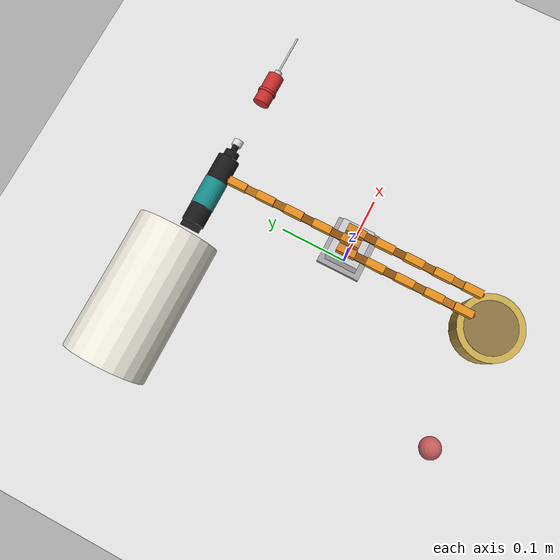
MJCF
<mujoco model="3finger_compliant_gripper">

  <compiler angle="radian" autolimits="true"/>

  <option gravity="0 0 -9.81" timestep="0.0005" integrator="implicit"
          solver="Newton" iterations="200" cone="elliptic"
          noslip_iterations="4" noslip_tolerance="1e-6">
    <flag warmstart="enable"/>
  </option>

  <visual>
    <headlight ambient="0.45 0.45 0.45" diffuse="0.6 0.6 0.6"/>
    <rgba haze="1.0 1.0 1.0 1"/>
    <quality shadowsize="2048"/>
    <map znear="0.001"/>
  </visual>

  <default>
    <default class="finger_link">
      <geom type="box" density="1100" friction="2.8 0.8 0.02"
            rgba="0.88 0.55 0.10 1" contype="1" conaffinity="1"
            condim="6" solref="0.012 1.0" solimp="0.82 0.95 0.008"
            margin="0.003"/>
    </default>
    <default class="finger_joint_geom">
      <geom type="box" density="1100" contype="1" conaffinity="1"
            condim="6" friction="2.8 0.8 0.02"
            solref="0.012 1.0" solimp="0.82 0.95 0.008"
            margin="0.003"/>
    </default>
    <default class="palm_link">
      <geom type="box" density="1300" friction="2.8 0.8 0.02"
            rgba="0.82 0.50 0.12 1" contype="1" conaffinity="1"
            condim="6" solref="0.012 1.0" solimp="0.82 0.95 0.008"
            margin="0.003"/>
    </default>
    <default class="finger_joint">
      <joint type="hinge" damping="0.018" armature="1e-5"
             limited="true" range="0 3.14"/>
    </default>
    <!-- Lip spheres: 2mm radius, 4 per link (tip + center × ±Z).
         Simulate TPU conforming around curved objects.
         condim=6 for full torsional/rolling friction. -->
    <default class="finger_lip">
      <geom type="sphere" density="0" contype="1" conaffinity="1"
            condim="6" friction="2.8 0.8 0.02"
            solref="0.016 1.0" solimp="0.78 0.92 0.010"
            rgba="0.88 0.55 0.10 0" margin="0.003"/>
    </default>
  </default>

  <asset>

    <texture name="white_sky" type="skybox" builtin="gradient"
             rgb1="1 1 1" rgb2="1 1 1" width="512" height="512"/>

    <material name="white_floor" rgba="1 1 1 1" shininess="0" specular="0"/>

    <texture name="grid" type="2d" builtin="checker"
             rgb1="0.92 0.92 0.92" rgb2="0.82 0.82 0.82"
             width="256" height="256"/>
    <material name="grid_mat" texture="grid" texrepeat="8 8"
              reflectance="0.1"/>
    <material name="body_mat" rgba="0.78 0.78 0.80 1"/>
    <material name="body_base_mat" rgba="0.62 0.62 0.64 1"/>
    <material name="joint1_mat" rgba="0.55 0.30 0.05 1"/>
    <material name="joint2_mat" rgba="0.62 0.36 0.08 1"/>
    <material name="joint3_mat" rgba="0.70 0.42 0.10 1"/>
    <material name="object_mat" rgba="0.30 0.70 0.35 0.85" specular="0.3"/>
    <material name="object2_mat" rgba="0.25 0.45 0.80 0.85" specular="0.3"/>
    <material name="object3_mat" rgba="0.80 0.30 0.30 0.85" specular="0.3"/>
    <material name="paper_towel_mat" rgba="0.95 0.93 0.88 1.0" specular="0.05"/>
    <!-- Paint tube (Liquitex Basics): dark body + light cap + teal label band -->
    <material name="paint_tube_mat"     rgba="0.10 0.10 0.10 1.0" specular="0.15"/>
    <material name="paint_tube_label_mat" rgba="0.10 0.55 0.55 1.0" specular="0.20"/>
    <material name="paint_tube_cap_mat" rgba="0.88 0.88 0.88 1.0" specular="0.40"/>
    <!-- Screwdriver: red rubber handle + silver steel shaft -->
    <material name="screwdriver_handle_mat" rgba="0.80 0.18 0.18 1.0" specular="0.10"/>
    <material name="screwdriver_shaft_mat"  rgba="0.80 0.80 0.82 1.0" specular="0.60"/>
    <!-- Tape roll (packing tape): amber body + cardboard core -->
    <material name="tape_roll_mat"  rgba="0.78 0.66 0.29 1.0" specular="0.25"/>
    <material name="tape_core_mat"  rgba="0.54 0.44 0.25 1.0" specular="0.10"/>
  </asset>

  <worldbody>

    <geom name="floor" type="plane" size="0.5 0.5 0.01" material="grid_mat"
          contype="1" conaffinity="1"/>
    <light pos="0 0 0.8" dir="0 0 -1" diffuse="0.7 0.7 0.7" castshadow="true"/>
    <light pos="0.4 0.4 0.6" dir="-0.3 -0.3 -0.5" diffuse="0.4 0.4 0.4"/>

    <!-- === GRIPPER ASSEMBLY  (base at z=0.144, rod_base bottom flush with floor) === -->
    <body name="gripper_base" pos="0 0 0.144">

      <geom name="body_main" type="box" size="0.026 0.022 0.018"
            pos="0 0 -0.030" material="body_mat"
            contype="0" conaffinity="0"/>
      <geom name="body_plate" type="box" size="0.033 0.030 0.005"
            pos="0 0 -0.053" material="body_base_mat"
            contype="0" conaffinity="0"/>
      <geom name="rod" type="cylinder" size="0.006 0.04"
            pos="0 0 -0.098" rgba="0.5 0.5 0.52 1"
            contype="0" conaffinity="0"/>
      <geom name="rod_base" type="cylinder" size="0.018 0.003"
            pos="0 0 -0.141" rgba="0.45 0.45 0.47 1"
            contype="0" conaffinity="0"/>

      <body name="A_palm" pos="-0.014 0.012 0" euler="0 0 -1.5708">
        <joint name="A_splay" type="hinge" axis="0 0 -1"
               limited="true" range="0 0.5236"
               damping="0.05" stiffness="0.5" armature="1e-4"/>
        <geom name="A_palm_geom" class="palm_link"
              size="0.0125 0.005 0.0075" pos="0.0125 0 0"/>
        <!-- link0: cable-driven proximal segment — NO flex sensor on hardware -->
        <body name="A_link0" pos="0.025 0 0">
          <joint name="A_j0" class="finger_joint" axis="0 -1 0"
                 stiffness="0.05750"/>
          <geom name="A_j0_geom" class="finger_joint_geom" material="joint1_mat"
                size="0.0075 0.005 0.001625" pos="0.0075 0 0"/>
          <geom name="A_l0_geom" class="finger_link"
                size="0.0125 0.005 0.006" pos="0.0275 0 0"/>
          <geom name="A_l0_lip_a" class="finger_lip" pos="0.033 0 0.007" size="0.002"/>
          <geom name="A_l0_lip_b" class="finger_lip" pos="0.033 0 -0.007" size="0.002"/>
          <geom name="A_l0_lip_c" class="finger_lip" pos="0.0225 0 0.007" size="0.002"/>
          <geom name="A_l0_lip_d" class="finger_lip" pos="0.0225 0 -0.007" size="0.002"/>
        <body name="A_link1" pos="0.040 0 0">
          <joint name="A_j1" class="finger_joint" axis="0 -1 0"
                 stiffness="0.05750"/>
          <geom name="A_j1_geom" class="finger_joint_geom" material="joint1_mat"
                size="0.0075 0.005 0.001625" pos="0.0075 0 0"/>
          <geom name="A_l1_geom" class="finger_link"
                size="0.0125 0.005 0.006" pos="0.0275 0 0"/>
          <geom name="A_l1_lip_a" class="finger_lip" pos="0.033 0 0.007" size="0.002"/>
          <geom name="A_l1_lip_b" class="finger_lip" pos="0.033 0 -0.007" size="0.002"/>
          <geom name="A_l1_lip_c" class="finger_lip" pos="0.0225 0 0.007" size="0.002"/>
          <geom name="A_l1_lip_d" class="finger_lip" pos="0.0225 0 -0.007" size="0.002"/>
          <site name="A_force1" pos="0.0275 0 0.012" size="0.008" rgba="1 0 0 0"/>
          <body name="A_link2" pos="0.040 0 0">
            <joint name="A_j2" class="finger_joint" axis="0 -1 0"
                   stiffness="0.05750"/>
            <geom name="A_j2_geom" class="finger_joint_geom" material="joint2_mat"
                  size="0.0075 0.005 0.001625" pos="0.0075 0 0"/>
            <geom name="A_l2_geom" class="finger_link"
                  size="0.0125 0.005 0.006" pos="0.0275 0 0"/>
            <geom name="A_l2_lip_a" class="finger_lip" pos="0.033 0 0.007" size="0.002"/>
            <geom name="A_l2_lip_b" class="finger_lip" pos="0.033 0 -0.007" size="0.002"/>
          <geom name="A_l2_lip_c" class="finger_lip" pos="0.0225 0 0.007" size="0.002"/>
          <geom name="A_l2_lip_d" class="finger_lip" pos="0.0225 0 -0.007" size="0.002"/>
            <site name="A_force2" pos="0.0275 0 0.012" size="0.008" rgba="1 0 0 0"/>
            <body name="A_link3" pos="0.040 0 0">
              <joint name="A_j3" class="finger_joint" axis="0 -1 0"
                     stiffness="0.07182"/>
              <geom name="A_j3_geom" class="finger_joint_geom" material="joint3_mat"
                    size="0.0075 0.005 0.00175" pos="0.0075 0 0"/>
              <geom name="A_l3_geom" class="finger_link"
                    size="0.0125 0.005 0.006" pos="0.0275 0 0"/>
              <geom name="A_l3_lip_a" class="finger_lip" pos="0.033 0 0.007" size="0.002"/>
              <geom name="A_l3_lip_b" class="finger_lip" pos="0.033 0 -0.007" size="0.002"/>
          <geom name="A_l3_lip_c" class="finger_lip" pos="0.0225 0 0.007" size="0.002"/>
          <geom name="A_l3_lip_d" class="finger_lip" pos="0.0225 0 -0.007" size="0.002"/>
              <site name="A_force3" pos="0.0275 0 0.012" size="0.008" rgba="1 0 0 0"/>
              <site name="A_tip" pos="0.040 0 0" size="0.003" rgba="0.95 0.25 0.2 1"/>
            </body>  <!-- /A_link3 -->
          </body>    <!-- /A_link2 -->
        </body>      <!-- /A_link1 -->
        </body>      <!-- /A_link0 -->
      </body>        <!-- /A_palm -->

      <!-- == FINGER B  (parallel, X=+14mm, extends -Y) == -->
      <body name="B_palm" pos="0.014 0.012 0" euler="0 0 -1.5708">
        <joint name="B_splay" type="hinge" axis="0 0 1"
               limited="true" range="0 0.5236"
               damping="0.05" stiffness="0.5" armature="1e-4"/>
        <geom name="B_palm_geom" class="palm_link"
              size="0.0125 0.005 0.0075" pos="0.0125 0 0"/>
        <!-- link0: cable-driven proximal segment — NO flex sensor on hardware -->
        <body name="B_link0" pos="0.025 0 0">
          <joint name="B_j0" class="finger_joint" axis="0 -1 0"
                 stiffness="0.05750"/>
          <geom name="B_j0_geom" class="finger_joint_geom" material="joint1_mat"
                size="0.0075 0.005 0.001625" pos="0.0075 0 0"/>
          <geom name="B_l0_geom" class="finger_link"
                size="0.0125 0.005 0.006" pos="0.0275 0 0"/>
          <geom name="B_l0_lip_a" class="finger_lip" pos="0.033 0 0.007" size="0.002"/>
          <geom name="B_l0_lip_b" class="finger_lip" pos="0.033 0 -0.007" size="0.002"/>
          <geom name="B_l0_lip_c" class="finger_lip" pos="0.0225 0 0.007" size="0.002"/>
          <geom name="B_l0_lip_d" class="finger_lip" pos="0.0225 0 -0.007" size="0.002"/>
        <body name="B_link1" pos="0.040 0 0">
          <joint name="B_j1" class="finger_joint" axis="0 -1 0"
                 stiffness="0.05750"/>
          <geom name="B_j1_geom" class="finger_joint_geom" material="joint1_mat"
                size="0.0075 0.005 0.001625" pos="0.0075 0 0"/>
          <geom name="B_l1_geom" class="finger_link"
                size="0.0125 0.005 0.006" pos="0.0275 0 0"/>
          <geom name="B_l1_lip_a" class="finger_lip" pos="0.033 0 0.007" size="0.002"/>
          <geom name="B_l1_lip_b" class="finger_lip" pos="0.033 0 -0.007" size="0.002"/>
          <geom name="B_l1_lip_c" class="finger_lip" pos="0.0225 0 0.007" size="0.002"/>
          <geom name="B_l1_lip_d" class="finger_lip" pos="0.0225 0 -0.007" size="0.002"/>
          <site name="B_force1" pos="0.0275 0 0.012" size="0.008" rgba="1 0 0 0"/>
          <body name="B_link2" pos="0.040 0 0">
            <joint name="B_j2" class="finger_joint" axis="0 -1 0"
                   stiffness="0.05750"/>
            <geom name="B_j2_geom" class="finger_joint_geom" material="joint2_mat"
                  size="0.0075 0.005 0.001625" pos="0.0075 0 0"/>
            <geom name="B_l2_geom" class="finger_link"
                  size="0.0125 0.005 0.006" pos="0.0275 0 0"/>
            <geom name="B_l2_lip_a" class="finger_lip" pos="0.033 0 0.007" size="0.002"/>
            <geom name="B_l2_lip_b" class="finger_lip" pos="0.033 0 -0.007" size="0.002"/>
          <geom name="B_l2_lip_c" class="finger_lip" pos="0.0225 0 0.007" size="0.002"/>
          <geom name="B_l2_lip_d" class="finger_lip" pos="0.0225 0 -0.007" size="0.002"/>
            <site name="B_force2" pos="0.0275 0 0.012" size="0.008" rgba="1 0 0 0"/>
            <body name="B_link3" pos="0.040 0 0">
              <joint name="B_j3" class="finger_joint" axis="0 -1 0"
                     stiffness="0.07182"/>
              <geom name="B_j3_geom" class="finger_joint_geom" material="joint3_mat"
                    size="0.0075 0.005 0.00175" pos="0.0075 0 0"/>
              <geom name="B_l3_geom" class="finger_link"
                    size="0.0125 0.005 0.006" pos="0.0275 0 0"/>
              <geom name="B_l3_lip_a" class="finger_lip" pos="0.033 0 0.007" size="0.002"/>
              <geom name="B_l3_lip_b" class="finger_lip" pos="0.033 0 -0.007" size="0.002"/>
          <geom name="B_l3_lip_c" class="finger_lip" pos="0.0225 0 0.007" size="0.002"/>
          <geom name="B_l3_lip_d" class="finger_lip" pos="0.0225 0 -0.007" size="0.002"/>
              <site name="B_force3" pos="0.0275 0 0.012" size="0.008" rgba="1 0 0 0"/>
              <site name="B_tip" pos="0.040 0 0" size="0.003" rgba="0.95 0.25 0.2 1"/>
            </body>  <!-- /B_link3 -->
          </body>    <!-- /B_link2 -->
        </body>      <!-- /B_link1 -->
        </body>      <!-- /B_link0 -->
      </body>        <!-- /B_palm -->

      <!-- == FINGER C  (opposing, X=0, extends +Y) == -->
      <body name="C_palm" pos="0 -0.012 0" euler="0 0 1.5708">
        <geom name="C_palm_geom" class="palm_link"
              size="0.0125 0.005 0.0075" pos="0.0125 0 0"/>
        <!-- link0: cable-driven proximal segment — NO flex sensor on hardware -->
        <body name="C_link0" pos="0.025 0 0">
          <joint name="C_j0" class="finger_joint" axis="0 -1 0"
                 stiffness="0.05750"/>
          <geom name="C_j0_geom" class="finger_joint_geom" material="joint1_mat"
                size="0.0075 0.005 0.001625" pos="0.0075 0 0"/>
          <geom name="C_l0_geom" class="finger_link"
                size="0.0125 0.005 0.006" pos="0.0275 0 0"/>
          <geom name="C_l0_lip_a" class="finger_lip" pos="0.033 0 0.007" size="0.002"/>
          <geom name="C_l0_lip_b" class="finger_lip" pos="0.033 0 -0.007" size="0.002"/>
          <geom name="C_l0_lip_c" class="finger_lip" pos="0.0225 0 0.007" size="0.002"/>
          <geom name="C_l0_lip_d" class="finger_lip" pos="0.0225 0 -0.007" size="0.002"/>
        <body name="C_link1" pos="0.040 0 0">
          <joint name="C_j1" class="finger_joint" axis="0 -1 0"
                 stiffness="0.05750"/>
          <geom name="C_j1_geom" class="finger_joint_geom" material="joint1_mat"
                size="0.0075 0.005 0.001625" pos="0.0075 0 0"/>
          <geom name="C_l1_geom" class="finger_link"
                size="0.0125 0.005 0.006" pos="0.0275 0 0"/>
          <geom name="C_l1_lip_a" class="finger_lip" pos="0.033 0 0.007" size="0.002"/>
          <geom name="C_l1_lip_b" class="finger_lip" pos="0.033 0 -0.007" size="0.002"/>
          <geom name="C_l1_lip_c" class="finger_lip" pos="0.0225 0 0.007" size="0.002"/>
          <geom name="C_l1_lip_d" class="finger_lip" pos="0.0225 0 -0.007" size="0.002"/>
          <site name="C_force1" pos="0.0275 0 0.012" size="0.008" rgba="1 0 0 0"/>
          <body name="C_link2" pos="0.040 0 0">
            <joint name="C_j2" class="finger_joint" axis="0 -1 0"
                   stiffness="0.05750"/>
            <geom name="C_j2_geom" class="finger_joint_geom" material="joint2_mat"
                  size="0.0075 0.005 0.001625" pos="0.0075 0 0"/>
            <geom name="C_l2_geom" class="finger_link"
                  size="0.0125 0.005 0.006" pos="0.0275 0 0"/>
            <geom name="C_l2_lip_a" class="finger_lip" pos="0.033 0 0.007" size="0.002"/>
            <geom name="C_l2_lip_b" class="finger_lip" pos="0.033 0 -0.007" size="0.002"/>
          <geom name="C_l2_lip_c" class="finger_lip" pos="0.0225 0 0.007" size="0.002"/>
          <geom name="C_l2_lip_d" class="finger_lip" pos="0.0225 0 -0.007" size="0.002"/>
            <site name="C_force2" pos="0.0275 0 0.012" size="0.008" rgba="1 0 0 0"/>
            <body name="C_link3" pos="0.040 0 0">
              <joint name="C_j3" class="finger_joint" axis="0 -1 0"
                     stiffness="0.07182"/>
              <geom name="C_j3_geom" class="finger_joint_geom" material="joint3_mat"
                    size="0.0075 0.005 0.00175" pos="0.0075 0 0"/>
              <geom name="C_l3_geom" class="finger_link"
                    size="0.0125 0.005 0.006" pos="0.0275 0 0"/>
              <geom name="C_l3_lip_a" class="finger_lip" pos="0.033 0 0.007" size="0.002"/>
              <geom name="C_l3_lip_b" class="finger_lip" pos="0.033 0 -0.007" size="0.002"/>
          <geom name="C_l3_lip_c" class="finger_lip" pos="0.0225 0 0.007" size="0.002"/>
          <geom name="C_l3_lip_d" class="finger_lip" pos="0.0225 0 -0.007" size="0.002"/>
              <site name="C_force3" pos="0.0275 0 0.012" size="0.008" rgba="1 0 0 0"/>
              <site name="C_tip" pos="0.040 0 0" size="0.003" rgba="0.95 0.25 0.2 1"/>
            </body>  <!-- /C_link3 -->
          </body>    <!-- /C_link2 -->
        </body>      <!-- /C_link1 -->
        </body>      <!-- /C_link0 -->
      </body>        <!-- /C_palm -->

    </body> <!-- /gripper_base -->

    <!-- === GRASPABLE OBJECTS === -->

    <body name="obj_paper_roll" pos="-0.18 0.22 0.0593" euler="0 1.5708 0">
      <freejoint name="obj_paper_roll_jnt"/>
      <geom name="obj_paper_roll_geom" type="cylinder"
            size="0.0593 0.1016"
            density="80" material="paper_towel_mat"
            friction="1.2 0.5 0.01" contype="1" conaffinity="1"
            condim="6" solref="0.020 1.0" solimp="0.85 0.95 0.004"
            margin="0.001"/>
    </body>

    <!-- Sphere -->
    <body name="obj_sphere" pos="-0.18 -0.22 0.016">
      <freejoint name="obj_sphere_jnt"/>
      <geom name="obj_sphere_geom" type="sphere" size="0.016"
            density="800" material="object3_mat"
            friction="1.2 0.5 0.01" contype="1" conaffinity="1"
            condim="6" solref="0.005 1.0"/>
    </body>

    <!-- ═══════════════════════════════════════════════════
         REAL GRIP OBJECTS — geometry from grip_objects.py
         ═══════════════════════════════════════════════════ -->

    <body name="obj_paint_tube" pos="0.0 0.22 0.017" euler="0 1.5708 0">
      <freejoint name="obj_paint_tube_jnt"/>
      <geom name="obj_pt_body" type="cylinder"
            size="0.017 0.055"
            density="900" material="paint_tube_mat"
            friction="1.1 0.5 0.01" contype="1" conaffinity="1"
            condim="6" solref="0.008 1.0" solimp="0.92 0.98 0.001"/>
      <geom name="obj_pt_label" type="cylinder"
            size="0.0173 0.022" pos="0 0 -0.005"
            density="0" material="paint_tube_label_mat"
            contype="0" conaffinity="0"/>
      <geom name="obj_pt_crimp" type="box"
            size="0.0015 0.015 0.005" pos="0 0 -0.059"
            density="1200" material="paint_tube_mat"
            contype="0" conaffinity="0"/>
      <geom name="obj_pt_shoulder" type="cylinder"
            size="0.011 0.006" pos="0 0 0.061"
            density="900" material="paint_tube_mat"
            contype="0" conaffinity="0"/>
      <geom name="obj_pt_nozzle" type="cylinder"
            size="0.005 0.005" pos="0 0 0.072"
            density="900" material="paint_tube_mat"
            contype="0" conaffinity="0"/>
      <geom name="obj_pt_cap" type="cylinder"
            size="0.0075 0.005" pos="0 0 0.082"
            density="900" material="paint_tube_cap_mat"
            contype="0" conaffinity="0"/>
    </body>

    <body name="obj_screwdriver" pos="0.18 0.22 0.013" euler="0 1.5708 0">
      <freejoint name="obj_screwdriver_jnt"/>
      <geom name="obj_sd_handle" type="cylinder"
            size="0.0127 0.025"
            density="1100" material="screwdriver_handle_mat"
            friction="1.8 0.8 0.01" contype="1" conaffinity="1"
            condim="6" solref="0.008 1.0" solimp="0.92 0.98 0.001"/>
      <geom name="obj_sd_grip" type="cylinder"
            size="0.014 0.002" pos="0 0 -0.005"
            density="0" material="screwdriver_handle_mat"
            contype="0" conaffinity="0"/>
      <geom name="obj_sd_ferrule" type="cylinder"
            size="0.006 0.004" pos="0 0 0.029"
            density="7800" material="screwdriver_shaft_mat"
            friction="0.8 0.3 0.01" contype="1" conaffinity="1"
            condim="6" solref="0.005 1.0"/>
      <geom name="obj_sd_shaft" type="cylinder"
            size="0.0015 0.031" pos="0 0 0.064"
            density="7800" material="screwdriver_shaft_mat"
            friction="0.8 0.3 0.01" contype="1" conaffinity="1"
            condim="6" solref="0.005 1.0"/>
    </body>

    <body name="obj_tape_roll" pos="0.0 -0.22 0.0254">
      <freejoint name="obj_tape_roll_jnt"/>
      <!-- Outer tape surface (amber/yellow) -->
      <geom name="obj_tr_outer" type="cylinder"
            size="0.047625 0.0254"
            density="600" material="tape_roll_mat"
            friction="1.4 0.6 0.01" contype="1" conaffinity="1"
            condim="6" solref="0.008 1.0" solimp="0.92 0.98 0.001"/>
      <!-- Inner cardboard core (visual only — no collision) -->
      <geom name="obj_tr_core" type="cylinder"
            size="0.0381 0.0255"
            density="0" material="tape_core_mat"
            contype="0" conaffinity="0"/>
    </body>

  </worldbody>

  <!-- === TENDONS === -->
  <tendon>
    <fixed name="tendon_A" limited="true" range="0 0.090">
      <joint joint="A_j0" coef="0.0050"/>
      <joint joint="A_j1" coef="0.0050"/>
      <joint joint="A_j2" coef="0.0050"/>
      <joint joint="A_j3" coef="0.0050"/>
    </fixed>
    <fixed name="tendon_B" limited="true" range="0 0.090">
      <joint joint="B_j0" coef="0.0050"/>
      <joint joint="B_j1" coef="0.0050"/>
      <joint joint="B_j2" coef="0.0050"/>
      <joint joint="B_j3" coef="0.0050"/>
    </fixed>
    <fixed name="tendon_C" limited="true" range="0 0.090">
      <joint joint="C_j0" coef="0.0050"/>
      <joint joint="C_j1" coef="0.0050"/>
      <joint joint="C_j2" coef="0.0050"/>
      <joint joint="C_j3" coef="0.0050"/>
    </fixed>
  </tendon>

  <!-- === ACTUATORS  (tuned to match real ST3215 servo forces) === -->
  <actuator>
    <position name="act_A_pos" tendon="tendon_A"
              kp="2000" kv="50"
              ctrlrange="0 0.090" forcerange="-20 20"/>
    <position name="act_B_pos" tendon="tendon_B"
              kp="2000" kv="50"
              ctrlrange="0 0.090" forcerange="-20 20"/>
    <position name="act_C_pos" tendon="tendon_C"
              kp="2000" kv="50"
              ctrlrange="0 0.090" forcerange="-20 20"/>

    <general name="act_A_frc" tendon="tendon_A"
             gainprm="1 0 0" biasprm="0 0 0"
             ctrlrange="-10 10" forcerange="-20 20"
             dyntype="none"/>
    <general name="act_B_frc" tendon="tendon_B"
             gainprm="1 0 0" biasprm="0 0 0"
             ctrlrange="-10 10" forcerange="-20 20"
             dyntype="none"/>
    <general name="act_C_frc" tendon="tendon_C"
             gainprm="1 0 0" biasprm="0 0 0"
             ctrlrange="-10 10" forcerange="-20 20"
             dyntype="none"/>

    <!-- Splay actuators: parallel fingers A & B rotate outward -->
    <position name="act_A_splay" joint="A_splay"
              kp="500" kv="20"
              ctrlrange="0 0.5236" forcerange="-10 10"/>
    <position name="act_B_splay" joint="B_splay"
              kp="500" kv="20"
              ctrlrange="0 0.5236" forcerange="-10 10"/>
  </actuator>

  <!-- === SENSORS === -->
  <sensor>
    <jointpos name="A_j0_pos" joint="A_j0"/>
    <jointpos name="A_j1_pos" joint="A_j1"/>
    <jointpos name="A_j2_pos" joint="A_j2"/>
    <jointpos name="A_j3_pos" joint="A_j3"/>
    <jointpos name="B_j0_pos" joint="B_j0"/>
    <jointpos name="B_j1_pos" joint="B_j1"/>
    <jointpos name="B_j2_pos" joint="B_j2"/>
    <jointpos name="B_j3_pos" joint="B_j3"/>
    <jointpos name="C_j0_pos" joint="C_j0"/>
    <jointpos name="C_j1_pos" joint="C_j1"/>
    <jointpos name="C_j2_pos" joint="C_j2"/>
    <jointpos name="C_j3_pos" joint="C_j3"/>
    <tendonpos name="ten_A_len" tendon="tendon_A"/>
    <tendonpos name="ten_B_len" tendon="tendon_B"/>
    <tendonpos name="ten_C_len" tendon="tendon_C"/>
    <touch name="A_touch1" site="A_force1"/>
    <touch name="A_touch2" site="A_force2"/>
    <touch name="A_touch3" site="A_force3"/>
    <touch name="B_touch1" site="B_force1"/>
    <touch name="B_touch2" site="B_force2"/>
    <touch name="B_touch3" site="B_force3"/>
    <touch name="C_touch1" site="C_force1"/>
    <touch name="C_touch2" site="C_force2"/>
    <touch name="C_touch3" site="C_force3"/>
  </sensor>

  <!-- Contact exclusions -->
  <!-- Adjacent bodies (parent-child) -->
  <contact>
    <!-- A finger chain -->
    <exclude body1="A_palm"  body2="A_link0"/>
    <exclude body1="A_link0" body2="A_link1"/>
    <exclude body1="A_link1" body2="A_link2"/>
    <exclude body1="A_link2" body2="A_link3"/>
    <!-- B finger chain -->
    <exclude body1="B_palm"  body2="B_link0"/>
    <exclude body1="B_link0" body2="B_link1"/>
    <exclude body1="B_link1" body2="B_link2"/>
    <exclude body1="B_link2" body2="B_link3"/>
    <!-- C finger chain -->
    <exclude body1="C_palm"  body2="C_link0"/>
    <exclude body1="C_link0" body2="C_link1"/>
    <exclude body1="C_link1" body2="C_link2"/>
    <exclude body1="C_link2" body2="C_link3"/>
    <!-- gripper_base ↔ proximal bodies -->
    <exclude body1="gripper_base" body2="A_palm"/>
    <exclude body1="gripper_base" body2="B_palm"/>
    <exclude body1="gripper_base" body2="C_palm"/>
    <exclude body1="gripper_base" body2="A_link0"/>
    <exclude body1="gripper_base" body2="B_link0"/>
    <exclude body1="gripper_base" body2="C_link0"/>
    <exclude body1="gripper_base" body2="A_link1"/>
    <exclude body1="gripper_base" body2="B_link1"/>
    <exclude body1="gripper_base" body2="C_link1"/>
    <!-- palm-to-palm (A/B are side-by-side) -->
    <exclude body1="A_palm" body2="B_palm"/>
    <exclude body1="A_palm" body2="C_palm"/>
    <exclude body1="B_palm" body2="C_palm"/>
    <!-- link0-to-link0 cross-finger (all three close at base) -->
    <exclude body1="A_link0" body2="B_link0"/>
    <exclude body1="A_link0" body2="C_link0"/>
    <exclude body1="B_link0" body2="C_link0"/>
  </contact>

</mujoco>
